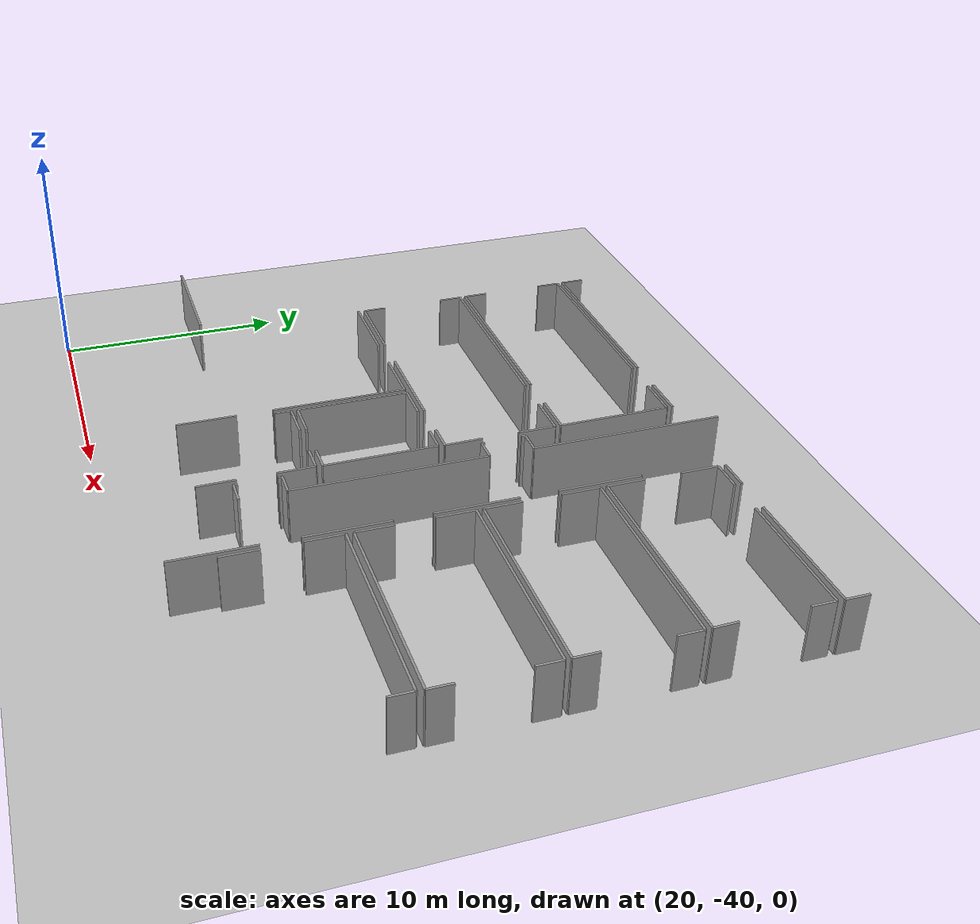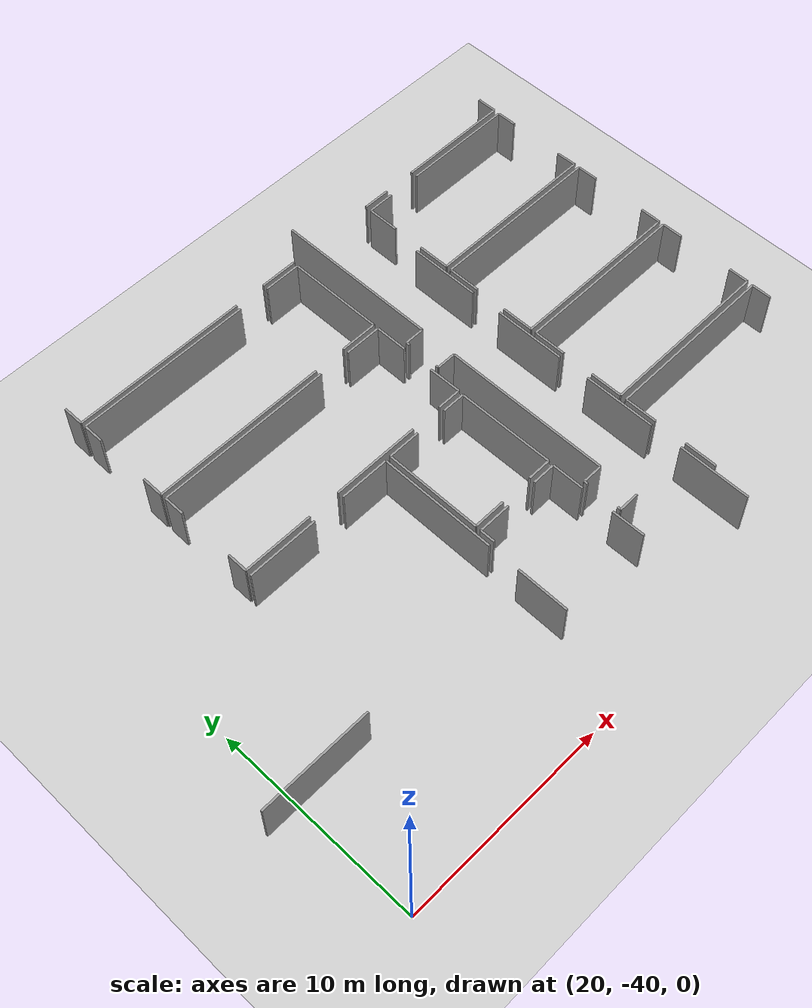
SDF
<sdf version="1.6">
 <world name="default">
  <model name="ground_plane">
   <static>1</static>
   <link name="link">
    <collision name="collision">
     <geometry><plane><normal>0 0 1</normal><size>100 100</size></plane></geometry>
     <surface><friction><ode><mu>100</mu><mu2>50</mu2></ode></friction></surface>
    </collision>
    <visual name="visual">
     <cast_shadows>0</cast_shadows>
     <geometry><plane><normal>0 0 1</normal><size>100 100</size></plane></geometry>
     <material>
      <script><uri>file://media/materials/scripts/gazebo.material</uri><name>Gazebo/Grey</name></script>
     </material>
    </visual>
   </link>
  </model>
  <model name="50025632">
   <static>1</static>
   <link name="Wall_230">
    <collision name="Wall_230_Collision">
     <geometry><box><size>1.00478195431 0.1 2.5</size></box></geometry>
     <pose>0.502390977157 0 1.25 0 0 0</pose>
    </collision>
    <visual name="Wall_230_Visual">
     <pose>0.502390977157 0 1.25 0 0 0</pose>
     <geometry><box><size>1.00478195431 0.1 2.5</size></box></geometry>
     <material>
      <script><uri>file://media/materials/scripts/gazebo.material</uri><name>Gazebo/Grey</name></script>
      <ambient>1 1 1 1</ambient>
     </material>
    </visual>
    <pose>88.3038350893 -83.4617919945 0 0 0 3.14159265359</pose>
   </link>
   <link name="Wall_231">
    <collision name="Wall_231_Collision">
     <geometry><box><size>0.170194389936 0.1 2.5</size></box></geometry>
     <pose>0.0850971949678 0 1.25 0 0 0</pose>
    </collision>
    <visual name="Wall_231_Visual">
     <pose>0.0850971949678 0 1.25 0 0 0</pose>
     <geometry><box><size>0.170194389936 0.1 2.5</size></box></geometry>
     <material>
      <script><uri>file://media/materials/scripts/gazebo.material</uri><name>Gazebo/Grey</name></script>
      <ambient>1 1 1 1</ambient>
     </material>
    </visual>
    <pose>87.2990531349 -83.4617919945 0 0 0 1.57079632679</pose>
   </link>
   <link name="Wall_232">
    <collision name="Wall_232_Collision">
     <geometry><box><size>0.170194389936 0.1 2.5</size></box></geometry>
     <pose>0.0850971949678 0 1.25 0 0 0</pose>
    </collision>
    <visual name="Wall_232_Visual">
     <pose>0.0850971949678 0 1.25 0 0 0</pose>
     <geometry><box><size>0.170194389936 0.1 2.5</size></box></geometry>
     <material>
      <script><uri>file://media/materials/scripts/gazebo.material</uri><name>Gazebo/Grey</name></script>
      <ambient>1 1 1 1</ambient>
     </material>
    </visual>
    <pose>87.2990531349 -81.6917703392 0 0 0 1.57079632679</pose>
   </link>
   <link name="Wall_233">
    <collision name="Wall_233_Collision">
     <geometry><box><size>1.00122565363 0.1 2.5</size></box></geometry>
     <pose>0.500612826815 0 1.25 0 0 0</pose>
    </collision>
    <visual name="Wall_233_Visual">
     <pose>0.500612826815 0 1.25 0 0 0</pose>
     <geometry><box><size>1.00122565363 0.1 2.5</size></box></geometry>
     <material>
      <script><uri>file://media/materials/scripts/gazebo.material</uri><name>Gazebo/Grey</name></script>
      <ambient>1 1 1 1</ambient>
     </material>
    </visual>
    <pose>87.2990531349 -81.5215759492 0 0 0 0.0</pose>
   </link>
   <link name="Wall_234">
    <collision name="Wall_234_Collision">
     <geometry><box><size>8.29062597243 0.1 2.5</size></box></geometry>
     <pose>4.14531298621 0 1.25 0 0 0</pose>
    </collision>
    <visual name="Wall_234_Visual">
     <pose>4.14531298621 0 1.25 0 0 0</pose>
     <geometry><box><size>8.29062597243 0.1 2.5</size></box></geometry>
     <material>
      <script><uri>file://media/materials/scripts/gazebo.material</uri><name>Gazebo/Grey</name></script>
      <ambient>1 1 1 1</ambient>
     </material>
    </visual>
    <pose>88.3002787886 -81.5215759492 0 0 0 1.57079632679</pose>
   </link>
   <link name="Wall_235">
    <collision name="Wall_235_Collision">
     <geometry><box><size>0.974934430706 0.1 2.5</size></box></geometry>
     <pose>0.487467215353 0 1.25 0 0 0</pose>
    </collision>
    <visual name="Wall_235_Visual">
     <pose>0.487467215353 0 1.25 0 0 0</pose>
     <geometry><box><size>0.974934430706 0.1 2.5</size></box></geometry>
     <material>
      <script><uri>file://media/materials/scripts/gazebo.material</uri><name>Gazebo/Grey</name></script>
      <ambient>1 1 1 1</ambient>
     </material>
    </visual>
    <pose>88.3002787886 -73.2309499768 0 0 0 3.14159265359</pose>
   </link>
   <link name="Wall_236">
    <collision name="Wall_236_Collision">
     <geometry><box><size>0.126375685064 0.1 2.5</size></box></geometry>
     <pose>0.0631878425321 0 1.25 0 0 0</pose>
    </collision>
    <visual name="Wall_236_Visual">
     <pose>0.0631878425321 0 1.25 0 0 0</pose>
     <geometry><box><size>0.126375685064 0.1 2.5</size></box></geometry>
     <material>
      <script><uri>file://media/materials/scripts/gazebo.material</uri><name>Gazebo/Grey</name></script>
      <ambient>1 1 1 1</ambient>
     </material>
    </visual>
    <pose>87.3253443579 -73.2309499768 0 0 0 1.57079632679</pose>
   </link>
   <link name="Wall_237">
    <collision name="Wall_237_Collision">
     <geometry><box><size>0.183911549722 0.1 2.5</size></box></geometry>
     <pose>0.0919557748608 0 1.25 0 0 0</pose>
    </collision>
    <visual name="Wall_237_Visual">
     <pose>0.0919557748608 0 1.25 0 0 0</pose>
     <geometry><box><size>0.183911549722 0.1 2.5</size></box></geometry>
     <material>
      <script><uri>file://media/materials/scripts/gazebo.material</uri><name>Gazebo/Grey</name></script>
      <ambient>1 1 1 1</ambient>
     </material>
    </visual>
    <pose>87.3253443579 -71.5014447472 0 0 0 1.57079632679</pose>
   </link>
   <link name="Wall_238">
    <collision name="Wall_238_Collision">
     <geometry><box><size>0.972394215931 0.1 2.5</size></box></geometry>
     <pose>0.486197107965 0 1.25 0 0 0</pose>
    </collision>
    <visual name="Wall_238_Visual">
     <pose>0.486197107965 0 1.25 0 0 0</pose>
     <geometry><box><size>0.972394215931 0.1 2.5</size></box></geometry>
     <material>
      <script><uri>file://media/materials/scripts/gazebo.material</uri><name>Gazebo/Grey</name></script>
      <ambient>1 1 1 1</ambient>
     </material>
    </visual>
    <pose>87.3253443579 -71.3175331974 0 0 0 0.0</pose>
   </link>
   <link name="Wall_239">
    <collision name="Wall_239_Collision">
     <geometry><box><size>8.26751001797 0.1 2.5</size></box></geometry>
     <pose>4.13375500899 0 1.25 0 0 0</pose>
    </collision>
    <visual name="Wall_239_Visual">
     <pose>4.13375500899 0 1.25 0 0 0</pose>
     <geometry><box><size>8.26751001797 0.1 2.5</size></box></geometry>
     <material>
      <script><uri>file://media/materials/scripts/gazebo.material</uri><name>Gazebo/Grey</name></script>
      <ambient>1 1 1 1</ambient>
     </material>
    </visual>
    <pose>88.2977385738 -71.3175331974 0 0 0 1.57079632679</pose>
   </link>
   <link name="Wall_254">
    <collision name="Wall_254_Collision">
     <geometry><box><size>3.51654632399 0.1 2.5</size></box></geometry>
     <pose>1.758273162 0 1.25 0 0 0</pose>
    </collision>
    <visual name="Wall_254_Visual">
     <pose>1.758273162 0 1.25 0 0 0</pose>
     <geometry><box><size>3.51654632399 0.1 2.5</size></box></geometry>
     <material>
      <script><uri>file://media/materials/scripts/gazebo.material</uri><name>Gazebo/Grey</name></script>
      <ambient>1 1 1 1</ambient>
     </material>
    </visual>
    <pose>91.3505686906 -67.9855334769 0 0 0 -1.57079632679</pose>
   </link>
   <link name="Wall_255">
    <collision name="Wall_255_Collision">
     <geometry><box><size>3.51044980853 0.1 2.5</size></box></geometry>
     <pose>1.75522490427 0 1.25 0 0 0</pose>
    </collision>
    <visual name="Wall_255_Visual">
     <pose>1.75522490427 0 1.25 0 0 0</pose>
     <geometry><box><size>3.51044980853 0.1 2.5</size></box></geometry>
     <material>
      <script><uri>file://media/materials/scripts/gazebo.material</uri><name>Gazebo/Grey</name></script>
      <ambient>1 1 1 1</ambient>
     </material>
    </visual>
    <pose>91.3505686906 -73.0851416487 0 0 0 -1.57079632679</pose>
   </link>
   <link name="Wall_256">
    <collision name="Wall_256_Collision">
     <geometry><box><size>3.53686804219 0.1 2.5</size></box></geometry>
     <pose>1.7684340211 0 1.25 0 0 0</pose>
    </collision>
    <visual name="Wall_256_Visual">
     <pose>1.7684340211 0 1.25 0 0 0</pose>
     <geometry><box><size>3.53686804219 0.1 2.5</size></box></geometry>
     <material>
      <script><uri>file://media/materials/scripts/gazebo.material</uri><name>Gazebo/Grey</name></script>
      <ambient>1 1 1 1</ambient>
     </material>
    </visual>
    <pose>91.3505686906 -78.1696355427 0 0 0 -1.57079632679</pose>
   </link>
   <link name="Wall_257">
    <collision name="Wall_257_Collision">
     <geometry><box><size>3.50917970114 0.1 2.5</size></box></geometry>
     <pose>1.75458985057 0 1.25 0 0 0</pose>
    </collision>
    <visual name="Wall_257_Visual">
     <pose>1.75458985057 0 1.25 0 0 0</pose>
     <geometry><box><size>3.50917970114 0.1 2.5</size></box></geometry>
     <material>
      <script><uri>file://media/materials/scripts/gazebo.material</uri><name>Gazebo/Grey</name></script>
      <ambient>1 1 1 1</ambient>
     </material>
    </visual>
    <pose>91.3505686906 -83.2730540367 0 0 0 -1.57079632679</pose>
   </link>
   <link name="Wall_265">
    <collision name="Wall_265_Collision">
     <geometry><box><size>1.87620263293 0.1 2.5</size></box></geometry>
     <pose>0.938101316466 0 1.25 0 0 0</pose>
    </collision>
    <visual name="Wall_265_Visual">
     <pose>0.938101316466 0 1.25 0 0 0</pose>
     <geometry><box><size>1.87620263293 0.1 2.5</size></box></geometry>
     <material>
      <script><uri>file://media/materials/scripts/gazebo.material</uri><name>Gazebo/Grey</name></script>
      <ambient>1 1 1 1</ambient>
     </material>
    </visual>
    <pose>87.041856389 -64.529190243 0 0 0 3.14159265359</pose>
   </link>
   <link name="Wall_266">
    <collision name="Wall_266_Collision">
     <geometry><box><size>8.7490077286 0.1 2.5</size></box></geometry>
     <pose>4.3745038643 0 1.25 0 0 0</pose>
    </collision>
    <visual name="Wall_266_Visual">
     <pose>4.3745038643 0 1.25 0 0 0</pose>
     <geometry><box><size>8.7490077286 0.1 2.5</size></box></geometry>
     <material>
      <script><uri>file://media/materials/scripts/gazebo.material</uri><name>Gazebo/Grey</name></script>
      <ambient>1 1 1 1</ambient>
     </material>
    </visual>
    <pose>83.5905935847 -64.529190243 0 0 0 3.14159265359</pose>
   </link>
   <link name="Wall_267">
    <collision name="Wall_267_Collision">
     <geometry><box><size>1.03818577861 0.1 2.5</size></box></geometry>
     <pose>0.519092889304 0 1.25 0 0 0</pose>
    </collision>
    <visual name="Wall_267_Visual">
     <pose>0.519092889304 0 1.25 0 0 0</pose>
     <geometry><box><size>1.03818577861 0.1 2.5</size></box></geometry>
     <material>
      <script><uri>file://media/materials/scripts/gazebo.material</uri><name>Gazebo/Grey</name></script>
      <ambient>1 1 1 1</ambient>
     </material>
    </visual>
    <pose>74.8415858561 -64.529190243 0 0 0 1.57079632679</pose>
   </link>
   <link name="Wall_272">
    <collision name="Wall_272_Collision">
     <geometry><box><size>1.8590561832 0.1 2.5</size></box></geometry>
     <pose>0.9295280916 0 1.25 0 0 0</pose>
    </collision>
    <visual name="Wall_272_Visual">
     <pose>0.9295280916 0 1.25 0 0 0</pose>
     <geometry><box><size>1.8590561832 0.1 2.5</size></box></geometry>
     <material>
      <script><uri>file://media/materials/scripts/gazebo.material</uri><name>Gazebo/Grey</name></script>
      <ambient>1 1 1 1</ambient>
     </material>
    </visual>
    <pose>87.0228047781 -69.616605384 0 0 0 3.14159265359</pose>
   </link>
   <link name="Wall_273">
    <collision name="Wall_273_Collision">
     <geometry><box><size>8.70290283043 0.1 2.5</size></box></geometry>
     <pose>4.35145141522 0 1.25 0 0 0</pose>
    </collision>
    <visual name="Wall_273_Visual">
     <pose>4.35145141522 0 1.25 0 0 0</pose>
     <geometry><box><size>8.70290283043 0.1 2.5</size></box></geometry>
     <material>
      <script><uri>file://media/materials/scripts/gazebo.material</uri><name>Gazebo/Grey</name></script>
      <ambient>1 1 1 1</ambient>
     </material>
    </visual>
    <pose>83.5622701899 -69.616605384 0 0 0 3.14159265359</pose>
   </link>
   <link name="Wall_274">
    <collision name="Wall_274_Collision">
     <geometry><box><size>1.07501889285 0.1 2.5</size></box></geometry>
     <pose>0.537509446424 0 1.25 0 0 0</pose>
    </collision>
    <visual name="Wall_274_Visual">
     <pose>0.537509446424 0 1.25 0 0 0</pose>
     <geometry><box><size>1.07501889285 0.1 2.5</size></box></geometry>
     <material>
      <script><uri>file://media/materials/scripts/gazebo.material</uri><name>Gazebo/Grey</name></script>
      <ambient>1 1 1 1</ambient>
     </material>
    </visual>
    <pose>74.8593673595 -69.616605384 0 0 0 1.57079632679</pose>
   </link>
   <link name="Wall_275">
    <collision name="Wall_275_Collision">
     <geometry><box><size>1.02713584434 0.1 2.5</size></box></geometry>
     <pose>0.513567922168 0 1.25 0 0 0</pose>
    </collision>
    <visual name="Wall_275_Visual">
     <pose>0.513567922168 0 1.25 0 0 0</pose>
     <geometry><box><size>1.02713584434 0.1 2.5</size></box></geometry>
     <material>
      <script><uri>file://media/materials/scripts/gazebo.material</uri><name>Gazebo/Grey</name></script>
      <ambient>1 1 1 1</ambient>
     </material>
    </visual>
    <pose>74.8593673595 -65.8136498441 0 0 0 1.57079632679</pose>
   </link>
   <link name="Wall_276">
    <collision name="Wall_276_Collision">
     <geometry><box><size>8.71750906539 0.1 2.5</size></box></geometry>
     <pose>4.3587545327 0 1.25 0 0 0</pose>
    </collision>
    <visual name="Wall_276_Visual">
     <pose>4.3587545327 0 1.25 0 0 0</pose>
     <geometry><box><size>8.71750906539 0.1 2.5</size></box></geometry>
     <material>
      <script><uri>file://media/materials/scripts/gazebo.material</uri><name>Gazebo/Grey</name></script>
      <ambient>1 1 1 1</ambient>
     </material>
    </visual>
    <pose>74.8593673595 -64.7865139998 0 0 0 0.0</pose>
   </link>
   <link name="Wall_277">
    <collision name="Wall_277_Collision">
     <geometry><box><size>1.85346771069 0.1 2.5</size></box></geometry>
     <pose>0.926733855347 0 1.25 0 0 0</pose>
    </collision>
    <visual name="Wall_277_Visual">
     <pose>0.926733855347 0 1.25 0 0 0</pose>
     <geometry><box><size>1.85346771069 0.1 2.5</size></box></geometry>
     <material>
      <script><uri>file://media/materials/scripts/gazebo.material</uri><name>Gazebo/Grey</name></script>
      <ambient>1 1 1 1</ambient>
     </material>
    </visual>
    <pose>85.1561279506 -64.7865139998 0 0 0 0.0</pose>
   </link>
   <link name="Wall_278">
    <collision name="Wall_278_Collision">
     <geometry><box><size>4.83010944604 0.1 2.5</size></box></geometry>
     <pose>2.41505472302 0 1.25 0 0 0</pose>
    </collision>
    <visual name="Wall_278_Visual">
     <pose>2.41505472302 0 1.25 0 0 0</pose>
     <geometry><box><size>4.83010944604 0.1 2.5</size></box></geometry>
     <material>
      <script><uri>file://media/materials/scripts/gazebo.material</uri><name>Gazebo/Grey</name></script>
      <ambient>1 1 1 1</ambient>
     </material>
    </visual>
    <pose>87.0095956613 -64.7865139998 0 0 0 -1.56806157856</pose>
   </link>
   <link name="Wall_279">
    <collision name="Wall_279_Collision">
     <geometry><box><size>1.20088653496 0.1 2.5</size></box></geometry>
     <pose>0.600443267478 0 1.25 0 0 0</pose>
    </collision>
    <visual name="Wall_279_Visual">
     <pose>0.600443267478 0 1.25 0 0 0</pose>
     <geometry><box><size>1.20088653496 0.1 2.5</size></box></geometry>
     <material>
      <script><uri>file://media/materials/scripts/gazebo.material</uri><name>Gazebo/Grey</name></script>
      <ambient>1 1 1 1</ambient>
     </material>
    </visual>
    <pose>87.041348346 -74.7044015572 0 0 0 3.14159265359</pose>
   </link>
   <link name="Wall_280">
    <collision name="Wall_280_Collision">
     <geometry><box><size>4.36447001594 0.1 2.5</size></box></geometry>
     <pose>2.18223500797 0 1.25 0 0 0</pose>
    </collision>
    <visual name="Wall_280_Visual">
     <pose>2.18223500797 0 1.25 0 0 0</pose>
     <geometry><box><size>4.36447001594 0.1 2.5</size></box></geometry>
     <material>
      <script><uri>file://media/materials/scripts/gazebo.material</uri><name>Gazebo/Grey</name></script>
      <ambient>1 1 1 1</ambient>
     </material>
    </visual>
    <pose>84.2768326062 -74.7044015572 0 0 0 3.14159265359</pose>
   </link>
   <link name="Wall_281">
    <collision name="Wall_281_Collision">
     <geometry><box><size>3.46739316809 0.1 2.5</size></box></geometry>
     <pose>1.73369658405 0 1.25 0 0 0</pose>
    </collision>
    <visual name="Wall_281_Visual">
     <pose>1.73369658405 0 1.25 0 0 0</pose>
     <geometry><box><size>3.46739316809 0.1 2.5</size></box></geometry>
     <material>
      <script><uri>file://media/materials/scripts/gazebo.material</uri><name>Gazebo/Grey</name></script>
      <ambient>1 1 1 1</ambient>
     </material>
    </visual>
    <pose>78.341620784 -74.7044015572 0 0 0 3.14159265359</pose>
   </link>
   <link name="Wall_282">
    <collision name="Wall_282_Collision">
     <geometry><box><size>1.01773704967 0.1 2.5</size></box></geometry>
     <pose>0.508868524834 0 1.25 0 0 0</pose>
    </collision>
    <visual name="Wall_282_Visual">
     <pose>0.508868524834 0 1.25 0 0 0</pose>
     <geometry><box><size>1.01773704967 0.1 2.5</size></box></geometry>
     <material>
      <script><uri>file://media/materials/scripts/gazebo.material</uri><name>Gazebo/Grey</name></script>
      <ambient>1 1 1 1</ambient>
     </material>
    </visual>
    <pose>74.8742276159 -74.7044015572 0 0 0 1.57079632679</pose>
   </link>
   <link name="Wall_283">
    <collision name="Wall_283_Collision">
     <geometry><box><size>1.02383356513 0.1 2.5</size></box></geometry>
     <pose>0.511916782564 0 1.25 0 0 0</pose>
    </collision>
    <visual name="Wall_283_Visual">
     <pose>0.511916782564 0 1.25 0 0 0</pose>
     <geometry><box><size>1.02383356513 0.1 2.5</size></box></geometry>
     <material>
      <script><uri>file://media/materials/scripts/gazebo.material</uri><name>Gazebo/Grey</name></script>
      <ambient>1 1 1 1</ambient>
     </material>
    </visual>
    <pose>74.8742276159 -70.9051293287 0 0 0 1.57079632679</pose>
   </link>
   <link name="Wall_284">
    <collision name="Wall_284_Collision">
     <geometry><box><size>8.71141254993 0.1 2.5</size></box></geometry>
     <pose>4.35570627497 0 1.25 0 0 0</pose>
    </collision>
    <visual name="Wall_284_Visual">
     <pose>4.35570627497 0 1.25 0 0 0</pose>
     <geometry><box><size>8.71141254993 0.1 2.5</size></box></geometry>
     <material>
      <script><uri>file://media/materials/scripts/gazebo.material</uri><name>Gazebo/Grey</name></script>
      <ambient>1 1 1 1</ambient>
     </material>
    </visual>
    <pose>74.8742276159 -69.8812957636 0 0 0 0.0</pose>
   </link>
   <link name="Wall_285">
    <collision name="Wall_285_Collision">
     <geometry><box><size>1.84444994824 0.1 2.5</size></box></geometry>
     <pose>0.922224974122 0 1.25 0 0 0</pose>
    </collision>
    <visual name="Wall_285_Visual">
     <pose>0.922224974122 0 1.25 0 0 0</pose>
     <geometry><box><size>1.84444994824 0.1 2.5</size></box></geometry>
     <material>
      <script><uri>file://media/materials/scripts/gazebo.material</uri><name>Gazebo/Grey</name></script>
      <ambient>1 1 1 1</ambient>
     </material>
    </visual>
    <pose>85.1747985292 -69.8812957636 0 0 0 0.0</pose>
   </link>
   <link name="Wall_286">
    <collision name="Wall_286_Collision">
     <geometry><box><size>1.62027599434 0.1 2.5</size></box></geometry>
     <pose>0.810137997168 0 1.25 0 0 0</pose>
    </collision>
    <visual name="Wall_286_Visual">
     <pose>0.810137997168 0 1.25 0 0 0</pose>
     <geometry><box><size>1.62027599434 0.1 2.5</size></box></geometry>
     <material>
      <script><uri>file://media/materials/scripts/gazebo.material</uri><name>Gazebo/Grey</name></script>
      <ambient>1 1 1 1</ambient>
     </material>
    </visual>
    <pose>87.0192484775 -69.8812957636 0 0 0 -1.57079632679</pose>
   </link>
   <link name="Wall_287">
    <collision name="Wall_287_Collision">
     <geometry><box><size>1.62753864643 0.1 2.5</size></box></geometry>
     <pose>0.813769323215 0 1.25 0 0 0</pose>
    </collision>
    <visual name="Wall_287_Visual">
     <pose>0.813769323215 0 1.25 0 0 0</pose>
     <geometry><box><size>1.62753864643 0.1 2.5</size></box></geometry>
     <material>
      <script><uri>file://media/materials/scripts/gazebo.material</uri><name>Gazebo/Grey</name></script>
      <ambient>1 1 1 1</ambient>
     </material>
    </visual>
    <pose>87.0192484775 -73.0770129614 0 0 0 -1.55721720363</pose>
   </link>
   <link name="Wall_288">
    <collision name="Wall_288_Collision">
     <geometry><box><size>1.17904068789 0.1 2.5</size></box></geometry>
     <pose>0.589520343945 0 1.25 0 0 0</pose>
    </collision>
    <visual name="Wall_288_Visual">
     <pose>0.589520343945 0 1.25 0 0 0</pose>
     <geometry><box><size>1.17904068789 0.1 2.5</size></box></geometry>
     <material>
      <script><uri>file://media/materials/scripts/gazebo.material</uri><name>Gazebo/Grey</name></script>
      <ambient>1 1 1 1</ambient>
     </material>
    </visual>
    <pose>87.0302984117 -79.806930976 0 0 0 3.14159265359</pose>
   </link>
   <link name="Wall_289">
    <collision name="Wall_289_Collision">
     <geometry><box><size>1.60363758756 0.1 2.5</size></box></geometry>
     <pose>0.801818793779 0 1.25 0 0 0</pose>
    </collision>
    <visual name="Wall_289_Visual">
     <pose>0.801818793779 0 1.25 0 0 0</pose>
     <geometry><box><size>1.60363758756 0.1 2.5</size></box></geometry>
     <material>
      <script><uri>file://media/materials/scripts/gazebo.material</uri><name>Gazebo/Grey</name></script>
      <ambient>1 1 1 1</ambient>
     </material>
    </visual>
    <pose>84.2603212102 -79.806930976 0 0 0 3.14159265359</pose>
   </link>
   <link name="Wall_290">
    <collision name="Wall_290_Collision">
     <geometry><box><size>4.83250458826 0.1 2.5</size></box></geometry>
     <pose>2.41625229413 0 1.25 0 0 0</pose>
    </collision>
    <visual name="Wall_290_Visual">
     <pose>2.41625229413 0 1.25 0 0 0</pose>
     <geometry><box><size>4.83250458826 0.1 2.5</size></box></geometry>
     <material>
      <script><uri>file://media/materials/scripts/gazebo.material</uri><name>Gazebo/Grey</name></script>
      <ambient>1 1 1 1</ambient>
     </material>
    </visual>
    <pose>82.6566836226 -79.806930976 0 0 0 1.57079632679</pose>
   </link>
   <link name="Wall_291">
    <collision name="Wall_291_Collision">
     <geometry><box><size>1.61011513523 0.1 2.5</size></box></geometry>
     <pose>0.805057567617 0 1.25 0 0 0</pose>
    </collision>
    <visual name="Wall_291_Visual">
     <pose>0.805057567617 0 1.25 0 0 0</pose>
     <geometry><box><size>1.61011513523 0.1 2.5</size></box></geometry>
     <material>
      <script><uri>file://media/materials/scripts/gazebo.material</uri><name>Gazebo/Grey</name></script>
      <ambient>1 1 1 1</ambient>
     </material>
    </visual>
    <pose>82.6566836226 -74.9744263878 0 0 0 0.0</pose>
   </link>
   <link name="Wall_292">
    <collision name="Wall_292_Collision">
     <geometry><box><size>1.15274946497 0.1 2.5</size></box></geometry>
     <pose>0.576374732484 0 1.25 0 0 0</pose>
    </collision>
    <visual name="Wall_292_Visual">
     <pose>0.576374732484 0 1.25 0 0 0</pose>
     <geometry><box><size>1.15274946497 0.1 2.5</size></box></geometry>
     <material>
      <script><uri>file://media/materials/scripts/gazebo.material</uri><name>Gazebo/Grey</name></script>
      <ambient>1 1 1 1</ambient>
     </material>
    </visual>
    <pose>85.8484634876 -74.9744263878 0 0 0 0.0</pose>
   </link>
   <link name="Wall_293">
    <collision name="Wall_293_Collision">
     <geometry><box><size>4.83259211599 0.1 2.5</size></box></geometry>
     <pose>2.41629605799 0 1.25 0 0 0</pose>
    </collision>
    <visual name="Wall_293_Visual">
     <pose>2.41629605799 0 1.25 0 0 0</pose>
     <geometry><box><size>4.83259211599 0.1 2.5</size></box></geometry>
     <material>
      <script><uri>file://media/materials/scripts/gazebo.material</uri><name>Gazebo/Grey</name></script>
      <ambient>1 1 1 1</ambient>
     </material>
    </visual>
    <pose>87.0012129526 -74.9744263878 0 0 0 -1.56477768626</pose>
   </link>
   <link name="Wall_296">
    <collision name="Wall_296_Collision">
     <geometry><box><size>3.49139819772 0.1 2.5</size></box></geometry>
     <pose>1.74569909886 0 1.25 0 0 0</pose>
    </collision>
    <visual name="Wall_296_Visual">
     <pose>1.74569909886 0 1.25 0 0 0</pose>
     <geometry><box><size>3.49139819772 0.1 2.5</size></box></geometry>
     <material>
      <script><uri>file://media/materials/scripts/gazebo.material</uri><name>Gazebo/Grey</name></script>
      <ambient>1 1 1 1</ambient>
     </material>
    </visual>
    <pose>74.8375215124 -74.9948751167 0 0 0 0.0</pose>
   </link>
   <link name="Wall_297">
    <collision name="Wall_297_Collision">
     <geometry><box><size>2.45524459093 0.1 2.5</size></box></geometry>
     <pose>1.22762229547 0 1.25 0 0 0</pose>
    </collision>
    <visual name="Wall_297_Visual">
     <pose>1.22762229547 0 1.25 0 0 0</pose>
     <geometry><box><size>2.45524459093 0.1 2.5</size></box></geometry>
     <material>
      <script><uri>file://media/materials/scripts/gazebo.material</uri><name>Gazebo/Grey</name></script>
      <ambient>1 1 1 1</ambient>
     </material>
    </visual>
    <pose>79.9194751916 -74.9948751167 0 0 0 0.0</pose>
   </link>
   <link name="Wall_298">
    <collision name="Wall_298_Collision">
     <geometry><box><size>5.82141020023 0.1 2.5</size></box></geometry>
     <pose>2.91070510012 0 1.25 0 0 0</pose>
    </collision>
    <visual name="Wall_298_Visual">
     <pose>2.91070510012 0 1.25 0 0 0</pose>
     <geometry><box><size>5.82141020023 0.1 2.5</size></box></geometry>
     <material>
      <script><uri>file://media/materials/scripts/gazebo.material</uri><name>Gazebo/Grey</name></script>
      <ambient>1 1 1 1</ambient>
     </material>
    </visual>
    <pose>82.3747197826 -74.9948751167 0 0 0 -1.57079632679</pose>
   </link>
   <link name="Wall_299">
    <collision name="Wall_299_Collision">
     <geometry><box><size>2.55904081063 0.1 2.5</size></box></geometry>
     <pose>1.27952040532 0 1.25 0 0 0</pose>
    </collision>
    <visual name="Wall_299_Visual">
     <pose>1.27952040532 0 1.25 0 0 0</pose>
     <geometry><box><size>2.55904081063 0.1 2.5</size></box></geometry>
     <material>
      <script><uri>file://media/materials/scripts/gazebo.material</uri><name>Gazebo/Grey</name></script>
      <ambient>1 1 1 1</ambient>
     </material>
    </visual>
    <pose>82.3747197826 -82.3663243727 0 0 0 -1.57551140005</pose>
   </link>
   <link name="Wall_304">
    <collision name="Wall_304_Collision">
     <geometry><box><size>0.726628436434 0.1 2.5</size></box></geometry>
     <pose>0.363314218217 0 1.25 0 0 0</pose>
    </collision>
    <visual name="Wall_304_Visual">
     <pose>0.363314218217 0 1.25 0 0 0</pose>
     <geometry><box><size>0.726628436434 0.1 2.5</size></box></geometry>
     <material>
      <script><uri>file://media/materials/scripts/gazebo.material</uri><name>Gazebo/Grey</name></script>
      <ambient>1 1 1 1</ambient>
     </material>
    </visual>
    <pose>82.6499520534 -80.8129830377 0 0 0 1.57079632679</pose>
   </link>
   <link name="Wall_305">
    <collision name="Wall_305_Collision">
     <geometry><box><size>1.61214730705 0.1 2.5</size></box></geometry>
     <pose>0.806073653527 0 1.25 0 0 0</pose>
    </collision>
    <visual name="Wall_305_Visual">
     <pose>0.806073653527 0 1.25 0 0 0</pose>
     <geometry><box><size>1.61214730705 0.1 2.5</size></box></geometry>
     <material>
      <script><uri>file://media/materials/scripts/gazebo.material</uri><name>Gazebo/Grey</name></script>
      <ambient>1 1 1 1</ambient>
     </material>
    </visual>
    <pose>82.6499520534 -80.0863546013 0 0 0 0.0</pose>
   </link>
   <link name="Wall_306">
    <collision name="Wall_306_Collision">
     <geometry><box><size>1.16075114151 0.1 2.5</size></box></geometry>
     <pose>0.580375570754 0 1.25 0 0 0</pose>
    </collision>
    <visual name="Wall_306_Visual">
     <pose>0.580375570754 0 1.25 0 0 0</pose>
     <geometry><box><size>1.16075114151 0.1 2.5</size></box></geometry>
     <material>
      <script><uri>file://media/materials/scripts/gazebo.material</uri><name>Gazebo/Grey</name></script>
      <ambient>1 1 1 1</ambient>
     </material>
    </visual>
    <pose>85.840461811 -80.0863546013 0 0 0 0.0</pose>
   </link>
   <link name="Wall_307">
    <collision name="Wall_307_Collision">
     <geometry><box><size>1.59500085732 0.1 2.5</size></box></geometry>
     <pose>0.797500428661 0 1.25 0 0 0</pose>
    </collision>
    <visual name="Wall_307_Visual">
     <pose>0.797500428661 0 1.25 0 0 0</pose>
     <geometry><box><size>1.59500085732 0.1 2.5</size></box></geometry>
     <material>
      <script><uri>file://media/materials/scripts/gazebo.material</uri><name>Gazebo/Grey</name></script>
      <ambient>1 1 1 1</ambient>
     </material>
    </visual>
    <pose>87.0012129526 -80.0863546013 0 0 0 -1.57079632679</pose>
   </link>
   <link name="Wall_308">
    <collision name="Wall_308_Collision">
     <geometry><box><size>1.62745589623 0.1 2.5</size></box></geometry>
     <pose>0.813727948114 0 1.25 0 0 0</pose>
    </collision>
    <visual name="Wall_308_Visual">
     <pose>0.813727948114 0 1.25 0 0 0</pose>
     <geometry><box><size>1.62745589623 0.1 2.5</size></box></geometry>
     <material>
      <script><uri>file://media/materials/scripts/gazebo.material</uri><name>Gazebo/Grey</name></script>
      <ambient>1 1 1 1</ambient>
     </material>
    </visual>
    <pose>87.0012129526 -83.2886763576 0 0 0 -1.55534329532</pose>
   </link>
   <link name="Wall_358">
    <collision name="Wall_358_Collision">
     <geometry><box><size>0.990683762312 0.1 2.5</size></box></geometry>
     <pose>0.495341881156 0 1.25 0 0 0</pose>
    </collision>
    <visual name="Wall_358_Visual">
     <pose>0.495341881156 0 1.25 0 0 0</pose>
     <geometry><box><size>0.990683762312 0.1 2.5</size></box></geometry>
     <material>
      <script><uri>file://media/materials/scripts/gazebo.material</uri><name>Gazebo/Grey</name></script>
      <ambient>1 1 1 1</ambient>
     </material>
    </visual>
    <pose>100.283996012 -81.0770383636 0 0 0 1.57079632679</pose>
   </link>
   <link name="Wall_359">
    <collision name="Wall_359_Collision">
     <geometry><box><size>8.6507014168 0.1 2.5</size></box></geometry>
     <pose>4.3253507084 0 1.25 0 0 0</pose>
    </collision>
    <visual name="Wall_359_Visual">
     <pose>4.3253507084 0 1.25 0 0 0</pose>
     <geometry><box><size>8.6507014168 0.1 2.5</size></box></geometry>
     <material>
      <script><uri>file://media/materials/scripts/gazebo.material</uri><name>Gazebo/Grey</name></script>
      <ambient>1 1 1 1</ambient>
     </material>
    </visual>
    <pose>100.283996012 -80.0863546013 0 0 0 3.14159265359</pose>
   </link>
   <link name="Wall_360">
    <collision name="Wall_360_Collision">
     <geometry><box><size>1.60439965199 0.1 2.5</size></box></geometry>
     <pose>0.802199825995 0 1.25 0 0 0</pose>
    </collision>
    <visual name="Wall_360_Visual">
     <pose>0.802199825995 0 1.25 0 0 0</pose>
     <geometry><box><size>1.60439965199 0.1 2.5</size></box></geometry>
     <material>
      <script><uri>file://media/materials/scripts/gazebo.material</uri><name>Gazebo/Grey</name></script>
      <ambient>1 1 1 1</ambient>
     </material>
    </visual>
    <pose>91.6332945951 -80.0863546013 0 0 0 -1.57079632679</pose>
   </link>
   <link name="Wall_361">
    <collision name="Wall_361_Collision">
     <geometry><box><size>1.59652498619 0.1 2.5</size></box></geometry>
     <pose>0.798262493094 0 1.25 0 0 0</pose>
    </collision>
    <visual name="Wall_361_Visual">
     <pose>0.798262493094 0 1.25 0 0 0</pose>
     <geometry><box><size>1.59652498619 0.1 2.5</size></box></geometry>
     <material>
      <script><uri>file://media/materials/scripts/gazebo.material</uri><name>Gazebo/Grey</name></script>
      <ambient>1 1 1 1</ambient>
     </material>
    </visual>
    <pose>91.6332945951 -83.3013774315 0 0 0 -1.57079632679</pose>
   </link>
   <link name="Wall_363">
    <collision name="Wall_363_Collision">
     <geometry><box><size>1.00274978249 0.1 2.5</size></box></geometry>
     <pose>0.501374891247 0 1.25 0 0 0</pose>
    </collision>
    <visual name="Wall_363_Visual">
     <pose>0.501374891247 0 1.25 0 0 0</pose>
     <geometry><box><size>1.00274978249 0.1 2.5</size></box></geometry>
     <material>
      <script><uri>file://media/materials/scripts/gazebo.material</uri><name>Gazebo/Grey</name></script>
      <ambient>1 1 1 1</ambient>
     </material>
    </visual>
    <pose>100.314478589 -79.7825449142 0 0 0 1.57079632679</pose>
   </link>
   <link name="Wall_364">
    <collision name="Wall_364_Collision">
     <geometry><box><size>1.04923571288 0.1 2.5</size></box></geometry>
     <pose>0.52461785644 0 1.25 0 0 0</pose>
    </collision>
    <visual name="Wall_364_Visual">
     <pose>0.52461785644 0 1.25 0 0 0</pose>
     <geometry><box><size>1.04923571288 0.1 2.5</size></box></geometry>
     <material>
      <script><uri>file://media/materials/scripts/gazebo.material</uri><name>Gazebo/Grey</name></script>
      <ambient>1 1 1 1</ambient>
     </material>
    </visual>
    <pose>100.314478589 -76.0187086818 0 0 0 1.57079632679</pose>
   </link>
   <link name="Wall_365">
    <collision name="Wall_365_Collision">
     <geometry><box><size>8.6896937136 0.1 2.5</size></box></geometry>
     <pose>4.3448468568 0 1.25 0 0 0</pose>
    </collision>
    <visual name="Wall_365_Visual">
     <pose>4.3448468568 0 1.25 0 0 0</pose>
     <geometry><box><size>8.6896937136 0.1 2.5</size></box></geometry>
     <material>
      <script><uri>file://media/materials/scripts/gazebo.material</uri><name>Gazebo/Grey</name></script>
      <ambient>1 1 1 1</ambient>
     </material>
    </visual>
    <pose>100.314478589 -74.9694729689 0 0 0 3.14159265359</pose>
   </link>
   <link name="Wall_366">
    <collision name="Wall_366_Collision">
     <geometry><box><size>1.61773577956 0.1 2.5</size></box></geometry>
     <pose>0.80886788978 0 1.25 0 0 0</pose>
    </collision>
    <visual name="Wall_366_Visual">
     <pose>0.80886788978 0 1.25 0 0 0</pose>
     <geometry><box><size>1.61773577956 0.1 2.5</size></box></geometry>
     <material>
      <script><uri>file://media/materials/scripts/gazebo.material</uri><name>Gazebo/Grey</name></script>
      <ambient>1 1 1 1</ambient>
     </material>
    </visual>
    <pose>91.6247848756 -74.9694729689 0 0 0 -1.57079632679</pose>
   </link>
   <link name="Wall_367">
    <collision name="Wall_367_Collision">
     <geometry><box><size>1.59766808284 0.1 2.5</size></box></geometry>
     <pose>0.798834041418 0 1.25 0 0 0</pose>
    </collision>
    <visual name="Wall_367_Visual">
     <pose>0.798834041418 0 1.25 0 0 0</pose>
     <geometry><box><size>1.59766808284 0.1 2.5</size></box></geometry>
     <material>
      <script><uri>file://media/materials/scripts/gazebo.material</uri><name>Gazebo/Grey</name></script>
      <ambient>1 1 1 1</ambient>
     </material>
    </visual>
    <pose>91.6247848756 -78.1841147669 0 0 0 -1.57079632679</pose>
   </link>
   <link name="Wall_368">
    <collision name="Wall_368_Collision">
     <geometry><box><size>8.68969374702 0.1 2.5</size></box></geometry>
     <pose>4.34484687351 0 1.25 0 0 0</pose>
    </collision>
    <visual name="Wall_368_Visual">
     <pose>4.34484687351 0 1.25 0 0 0</pose>
     <geometry><box><size>8.68969374702 0.1 2.5</size></box></geometry>
     <material>
      <script><uri>file://media/materials/scripts/gazebo.material</uri><name>Gazebo/Grey</name></script>
      <ambient>1 1 1 1</ambient>
     </material>
    </visual>
    <pose>91.6247848756 -79.7817828497 0 0 0 -8.76975018582e-05</pose>
   </link>
   <link name="Wall_369">
    <collision name="Wall_369_Collision">
     <geometry><box><size>1.03348638127 0.1 2.5</size></box></geometry>
     <pose>0.516743190637 0 1.25 0 0 0</pose>
    </collision>
    <visual name="Wall_369_Visual">
     <pose>0.516743190637 0 1.25 0 0 0</pose>
     <geometry><box><size>1.03348638127 0.1 2.5</size></box></geometry>
     <material>
      <script><uri>file://media/materials/scripts/gazebo.material</uri><name>Gazebo/Grey</name></script>
      <ambient>1 1 1 1</ambient>
     </material>
    </visual>
    <pose>100.314478589 -74.714181384 0 0 0 1.57079632679</pose>
   </link>
   <link name="Wall_370">
    <collision name="Wall_370_Collision">
     <geometry><box><size>1.0371696927 0.1 2.5</size></box></geometry>
     <pose>0.518584846349 0 1.25 0 0 0</pose>
    </collision>
    <visual name="Wall_370_Visual">
     <pose>0.518584846349 0 1.25 0 0 0</pose>
     <geometry><box><size>1.0371696927 0.1 2.5</size></box></geometry>
     <material>
      <script><uri>file://media/materials/scripts/gazebo.material</uri><name>Gazebo/Grey</name></script>
      <ambient>1 1 1 1</ambient>
     </material>
    </visual>
    <pose>100.314478589 -70.9051293287 0 0 0 1.57079632679</pose>
   </link>
   <link name="Wall_371">
    <collision name="Wall_371_Collision">
     <geometry><box><size>8.69502816463 0.1 2.5</size></box></geometry>
     <pose>4.34751408232 0 1.25 0 0 0</pose>
    </collision>
    <visual name="Wall_371_Visual">
     <pose>4.34751408232 0 1.25 0 0 0</pose>
     <geometry><box><size>8.69502816463 0.1 2.5</size></box></geometry>
     <material>
      <script><uri>file://media/materials/scripts/gazebo.material</uri><name>Gazebo/Grey</name></script>
      <ambient>1 1 1 1</ambient>
     </material>
    </visual>
    <pose>100.314478589 -69.867959636 0 0 0 3.14159265359</pose>
   </link>
   <link name="Wall_372">
    <collision name="Wall_372_Collision">
     <geometry><box><size>1.62510240241 0.1 2.5</size></box></geometry>
     <pose>0.812551201204 0 1.25 0 0 0</pose>
    </collision>
    <visual name="Wall_372_Visual">
     <pose>0.812551201204 0 1.25 0 0 0</pose>
     <geometry><box><size>1.62510240241 0.1 2.5</size></box></geometry>
     <material>
      <script><uri>file://media/materials/scripts/gazebo.material</uri><name>Gazebo/Grey</name></script>
      <ambient>1 1 1 1</ambient>
     </material>
    </visual>
    <pose>91.6194504245 -69.867959636 0 0 0 -1.57079632679</pose>
   </link>
   <link name="Wall_373">
    <collision name="Wall_373_Collision">
     <geometry><box><size>1.60643182381 0.1 2.5</size></box></geometry>
     <pose>0.803215911905 0 1.25 0 0 0</pose>
    </collision>
    <visual name="Wall_373_Visual">
     <pose>0.803215911905 0 1.25 0 0 0</pose>
     <geometry><box><size>1.60643182381 0.1 2.5</size></box></geometry>
     <material>
      <script><uri>file://media/materials/scripts/gazebo.material</uri><name>Gazebo/Grey</name></script>
      <ambient>1 1 1 1</ambient>
     </material>
    </visual>
    <pose>91.6194504245 -73.0851416487 0 0 0 -1.57079632679</pose>
   </link>
   <link name="Wall_374">
    <collision name="Wall_374_Collision">
     <geometry><box><size>8.69505755596 0.1 2.5</size></box></geometry>
     <pose>4.34752877798 0 1.25 0 0 0</pose>
    </collision>
    <visual name="Wall_374_Visual">
     <pose>4.34752877798 0 1.25 0 0 0</pose>
     <geometry><box><size>8.69505755596 0.1 2.5</size></box></geometry>
     <material>
      <script><uri>file://media/materials/scripts/gazebo.material</uri><name>Gazebo/Grey</name></script>
      <ambient>1 1 1 1</ambient>
     </material>
    </visual>
    <pose>91.6194504245 -74.6915734725 0 0 0 -0.00260009054877</pose>
   </link>
   <link name="Wall_375">
    <collision name="Wall_375_Collision">
     <geometry><box><size>8.69070979951 0.1 2.5</size></box></geometry>
     <pose>4.34535489976 0 1.25 0 0 0</pose>
    </collision>
    <visual name="Wall_375_Visual">
     <pose>4.34535489976 0 1.25 0 0 0</pose>
     <geometry><box><size>8.69070979951 0.1 2.5</size></box></geometry>
     <material>
      <script><uri>file://media/materials/scripts/gazebo.material</uri><name>Gazebo/Grey</name></script>
      <ambient>1 1 1 1</ambient>
     </material>
    </visual>
    <pose>100.314478589 -69.5873929141 0 0 0 3.14159265359</pose>
   </link>
   <link name="Wall_376">
    <collision name="Wall_376_Collision">
     <geometry><box><size>1.60668584529 0.1 2.5</size></box></geometry>
     <pose>0.803342922644 0 1.25 0 0 0</pose>
    </collision>
    <visual name="Wall_376_Visual">
     <pose>0.803342922644 0 1.25 0 0 0</pose>
     <geometry><box><size>1.60668584529 0.1 2.5</size></box></geometry>
     <material>
      <script><uri>file://media/materials/scripts/gazebo.material</uri><name>Gazebo/Grey</name></script>
      <ambient>1 1 1 1</ambient>
     </material>
    </visual>
    <pose>91.6237687897 -69.5873929141 0 0 0 1.57079632679</pose>
   </link>
   <link name="Wall_377">
    <collision name="Wall_377_Collision">
     <geometry><box><size>1.61354442518 0.1 2.5</size></box></geometry>
     <pose>0.806772212591 0 1.25 0 0 0</pose>
    </collision>
    <visual name="Wall_377_Visual">
     <pose>0.806772212591 0 1.25 0 0 0</pose>
     <geometry><box><size>1.61354442518 0.1 2.5</size></box></geometry>
     <material>
      <script><uri>file://media/materials/scripts/gazebo.material</uri><name>Gazebo/Grey</name></script>
      <ambient>1 1 1 1</ambient>
     </material>
    </visual>
    <pose>91.6237687897 -66.4089491767 0 0 0 1.57079632679</pose>
   </link>
   <link name="Wall_378">
    <collision name="Wall_378_Collision">
     <geometry><box><size>1.34021731537 0.1 2.5</size></box></geometry>
     <pose>0.670108657687 0 1.25 0 0 0</pose>
    </collision>
    <visual name="Wall_378_Visual">
     <pose>0.670108657687 0 1.25 0 0 0</pose>
     <geometry><box><size>1.34021731537 0.1 2.5</size></box></geometry>
     <material>
      <script><uri>file://media/materials/scripts/gazebo.material</uri><name>Gazebo/Grey</name></script>
      <ambient>1 1 1 1</ambient>
     </material>
    </visual>
    <pose>91.6237687897 -64.7954047515 0 0 0 0.0</pose>
   </link>
   <link name="Wall_379">
    <collision name="Wall_379_Collision">
     <geometry><box><size>5.68119034464 0.1 2.5</size></box></geometry>
     <pose>2.84059517232 0 1.25 0 0 0</pose>
    </collision>
    <visual name="Wall_379_Visual">
     <pose>2.84059517232 0 1.25 0 0 0</pose>
     <geometry><box><size>5.68119034464 0.1 2.5</size></box></geometry>
     <material>
      <script><uri>file://media/materials/scripts/gazebo.material</uri><name>Gazebo/Grey</name></script>
      <ambient>1 1 1 1</ambient>
     </material>
    </visual>
    <pose>94.5989953451 -64.7954047515 0 0 0 0.0</pose>
   </link>
   <link name="Wall_380">
    <collision name="Wall_380_Collision">
     <geometry><box><size>1.0021147288 0.1 2.5</size></box></geometry>
     <pose>0.5010573644 0 1.25 0 0 0</pose>
    </collision>
    <visual name="Wall_380_Visual">
     <pose>0.5010573644 0 1.25 0 0 0</pose>
     <geometry><box><size>1.0021147288 0.1 2.5</size></box></geometry>
     <material>
      <script><uri>file://media/materials/scripts/gazebo.material</uri><name>Gazebo/Grey</name></script>
      <ambient>1 1 1 1</ambient>
     </material>
    </visual>
    <pose>100.28018569 -64.7954047515 0 0 0 -1.57079632679</pose>
   </link>
   <link name="Wall_381">
    <collision name="Wall_381_Collision">
     <geometry><box><size>1.00942897514 0.1 2.5</size></box></geometry>
     <pose>0.50471448757 0 1.25 0 0 0</pose>
    </collision>
    <visual name="Wall_381_Visual">
     <pose>0.50471448757 0 1.25 0 0 0</pose>
     <geometry><box><size>1.00942897514 0.1 2.5</size></box></geometry>
     <material>
      <script><uri>file://media/materials/scripts/gazebo.material</uri><name>Gazebo/Grey</name></script>
      <ambient>1 1 1 1</ambient>
     </material>
    </visual>
    <pose>100.28018569 -68.5785466161 0 0 0 -1.53681721565</pose>
   </link>
   <link name="Wall_382">
    <collision name="Wall_382_Collision">
     <geometry><box><size>0.995510170385 0.1 2.5</size></box></geometry>
     <pose>0.497755085192 0 1.25 0 0 0</pose>
    </collision>
    <visual name="Wall_382_Visual">
     <pose>0.497755085192 0 1.25 0 0 0</pose>
     <geometry><box><size>0.995510170385 0.1 2.5</size></box></geometry>
     <material>
      <script><uri>file://media/materials/scripts/gazebo.material</uri><name>Gazebo/Grey</name></script>
      <ambient>1 1 1 1</ambient>
     </material>
    </visual>
    <pose>100.301777515 -64.4832123556 0 0 0 1.57079632679</pose>
   </link>
   <link name="Wall_389">
    <collision name="Wall_389_Collision">
     <geometry><box><size>1.33869318651 0.1 2.5</size></box></geometry>
     <pose>0.669346593254 0 1.25 0 0 0</pose>
    </collision>
    <visual name="Wall_389_Visual">
     <pose>0.669346593254 0 1.25 0 0 0</pose>
     <geometry><box><size>1.33869318651 0.1 2.5</size></box></geometry>
     <material>
      <script><uri>file://media/materials/scripts/gazebo.material</uri><name>Gazebo/Grey</name></script>
      <ambient>1 1 1 1</ambient>
     </material>
    </visual>
    <pose>91.6278331333 -64.4871496885 0 0 0 0.0</pose>
   </link>
   <link name="Wall_390">
    <collision name="Wall_390_Collision">
     <geometry><box><size>5.69833815465 0.1 2.5</size></box></geometry>
     <pose>2.84916907732 0 1.25 0 0 0</pose>
    </collision>
    <visual name="Wall_390_Visual">
     <pose>2.84916907732 0 1.25 0 0 0</pose>
     <geometry><box><size>5.69833815465 0.1 2.5</size></box></geometry>
     <material>
      <script><uri>file://media/materials/scripts/gazebo.material</uri><name>Gazebo/Grey</name></script>
      <ambient>1 1 1 1</ambient>
     </material>
    </visual>
    <pose>94.6034407209 -64.4871496885 0 0 0 0.000690961664248</pose>
   </link>
   <link name="Wall_411">
    <collision name="Wall_411_Collision">
     <geometry><box><size>5.41484882547 0.1 2.5</size></box></geometry>
     <pose>2.70742441273 0 1.25 0 0 0</pose>
    </collision>
    <visual name="Wall_411_Visual">
     <pose>2.70742441273 0 1.25 0 0 0</pose>
     <geometry><box><size>5.41484882547 0.1 2.5</size></box></geometry>
     <material>
      <script><uri>file://media/materials/scripts/gazebo.material</uri><name>Gazebo/Grey</name></script>
      <ambient>1 1 1 1</ambient>
     </material>
    </visual>
    <pose>73.9851524446 -82.4377044079 0 0 0 3.14159265359</pose>
   </link>
   <pose>-50.15 48.4557939124 0 0 0 0</pose>
  </model>
 </world>
</sdf>
